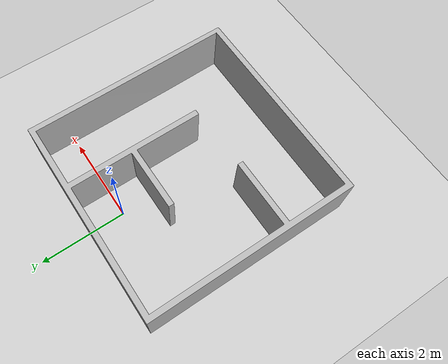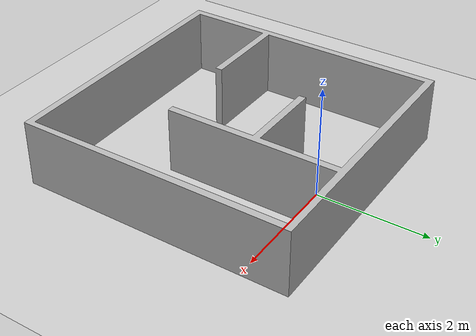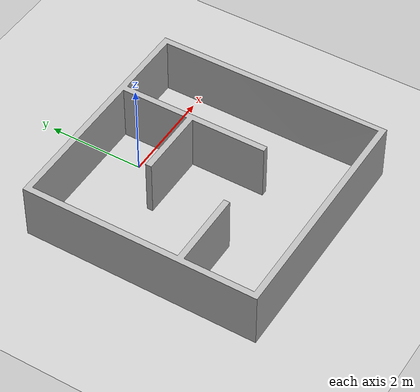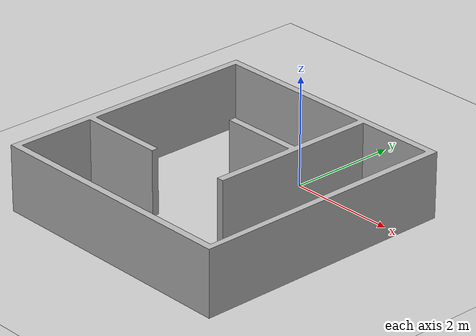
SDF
<?xml version="1.0"?>
<sdf version="1.6">
  <world name="labyrinth_small">

    <physics name='1ms' type='ignored'>
        <max_step_size>0.003</max_step_size>
        <real_time_factor>1</real_time_factor>
        <real_time_update_rate>1000</real_time_update_rate>
    </physics>
    <plugin name='gz::sim::systems::Physics' filename='gz-sim-physics-system' />
    <plugin name='gz::sim::systems::UserCommands' filename='gz-sim-user-commands-system' />
    <plugin name='gz::sim::systems::SceneBroadcaster' filename='gz-sim-scene-broadcaster-system' />
    <plugin name='gz::sim::systems::Contact' filename='gz-sim-contact-system' />
    <light name='sun' type='directional'>
        <cast_shadows>1</cast_shadows>
        <pose>0 0 10 0 -0 0</pose>
        <diffuse>0.8 0.8 0.8 1</diffuse>
        <specular>0.2 0.2 0.2 1</specular>
        <attenuation>
            <range>1000</range>
            <constant>0.90000000000000002</constant>
            <linear>0.01</linear>
            <quadratic>0.001</quadratic>
        </attenuation>
        <direction>-0.5 0.1 -0.9</direction>
        <spot>
            <inner_angle>0</inner_angle>
            <outer_angle>0</outer_angle>
            <falloff>0</falloff>
        </spot>
    </light>
    <gravity>0 0 -9.8</gravity>
    <magnetic_field>6e-06 2.3e-05 -4.2e-05</magnetic_field>
    <atmosphere type='adiabatic' />
    <scene>
        <ambient>0.4 0.4 0.4 1</ambient>
        <background>0.7 0.7 0.7 1</background>
        <shadows>1</shadows>
    </scene>
    <model name='ground_plane'>
        <static>1</static>
        <link name='link'>
            <collision name='collision'>
                <geometry>
                    <plane>
                        <normal>0 0 1</normal>
                        <size>100 100</size>
                    </plane>
                </geometry>
                <surface>
                    <friction>
                        <ode />
                    </friction>
                    <bounce />
                    <contact />
                </surface>
            </collision>
            <visual name='visual'>
                <geometry>
                    <plane>
                        <normal>0 0 1</normal>
                        <size>100 100</size>
                    </plane>
                </geometry>
                <material>
                    <ambient>0.8 0.8 0.8 1</ambient>
                    <diffuse>0.8 0.8 0.8 1</diffuse>
                    <specular>0.8 0.8 0.8 1</specular>
                    <pbr>
                        <metal>
                            <albedo_map></albedo_map>
                            <roughness>0.6</roughness>
                            <metalness>0.1</metalness>
                        </metal>
                    </pbr>
                </material>
                <plugin name='__default__' filename='__default__' />
            </visual>
        </link>
        <plugin name='__default__' filename='__default__' />
        <pose>0 0 0 0 -0 0</pose>
    </model>

    <gui fullscreen='0'>
      <camera name='user_camera'>
        <pose frame=''>0.0 0.0 10 0 1.57 0.0</pose>
        <view_controller>orbit</view_controller>
        <projection_type>orthographic</projection_type>
      </camera>
    </gui>

    <physics type="ode">
      <real_time_update_rate>1000.0</real_time_update_rate>
      <max_step_size>0.001</max_step_size>
      <real_time_factor>1</real_time_factor>
      <ode>
        <solver>
          <type>quick</type>
          <iters>150</iters>
          <precon_iters>0</precon_iters>
          <sor>1.400000</sor>
          <use_dynamic_moi_rescaling>1</use_dynamic_moi_rescaling>
        </solver>
        <constraints>
          <cfm>0.00001</cfm>
          <erp>0.2</erp>
          <contact_max_correcting_vel>2000.000000</contact_max_correcting_vel>
          <contact_surface_layer>0.01000</contact_surface_layer>
        </constraints>
      </ode>
    </physics>

    <model name="turtlebot3_labyrinth_small">
      <static>1</static>
      <include>
        <uri>model://turtlebot3_labyrinth_small</uri>
      </include>
    </model>

  </world>
</sdf>

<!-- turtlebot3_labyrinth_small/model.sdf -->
<sdf version="1.5">
  <model name="turtlebot3_labyrinth_small">
    <static>true</static>    <!-- true for non-movable objects -->
    <link name="link">
      <visual name="visual">
        <geometry>
          <mesh>
            <uri>model://turtlebot3_labyrinth_small/meshes/labyrinth_small.glb</uri>
          </mesh>
        </geometry>
      </visual>
      <collision name="collision">
        <geometry>
          <mesh>
            <uri>model://turtlebot3_labyrinth_small/meshes/labyrinth_small.glb</uri>
          </mesh>
        </geometry>
      </collision>
    </link>
  </model>
</sdf>
